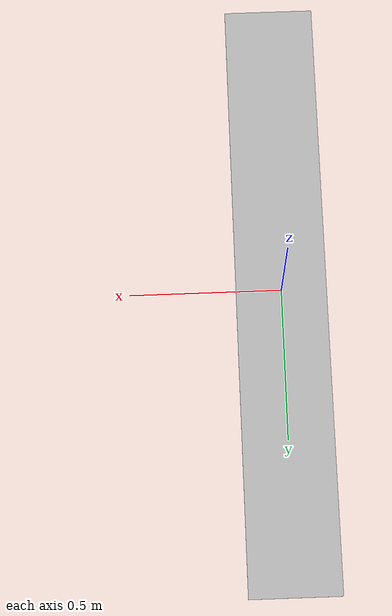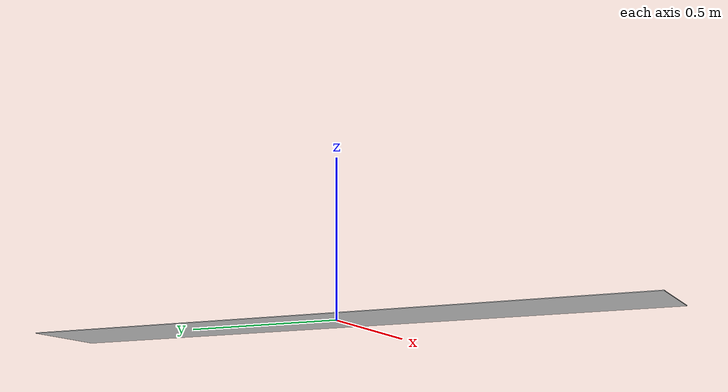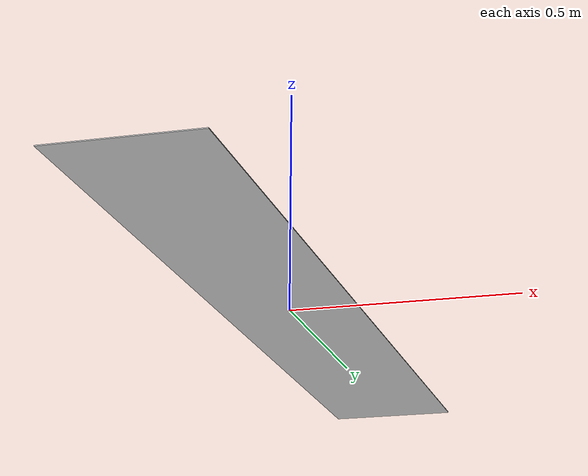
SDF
<?xml version='1.0'?>
<sdf version='1.6'>
  <model name='baslang?c'>
    <link name='body'>
      <pose frame=''>0 0 0 0 -0 0</pose>
      <self_collide>0</self_collide>
      <kinematic>0</kinematic>
      <visual name='visual'>
        <geometry>
          <mesh>
            <uri>file://baslangıc.dae</uri>
          </mesh>
        </geometry>
        <material>
          <shader type='pixel'/>
        </material>
        <pose frame=''>0 0 0 0 -0 0</pose>
        <cast_shadows>1</cast_shadows>
        <transparency>0</transparency>
      </visual>
    </link>
    <static>1</static>
    <allow_auto_disable>1</allow_auto_disable>
  </model>
</sdf>
